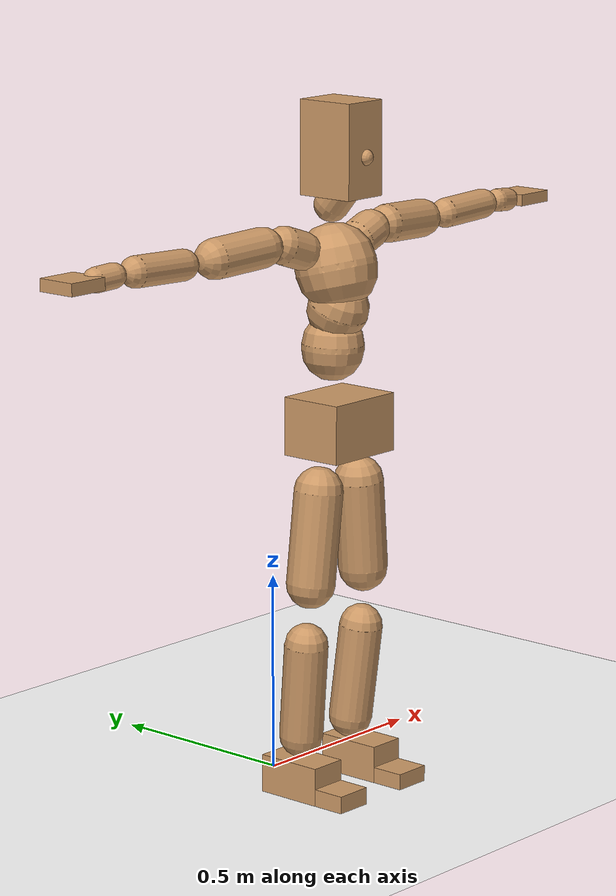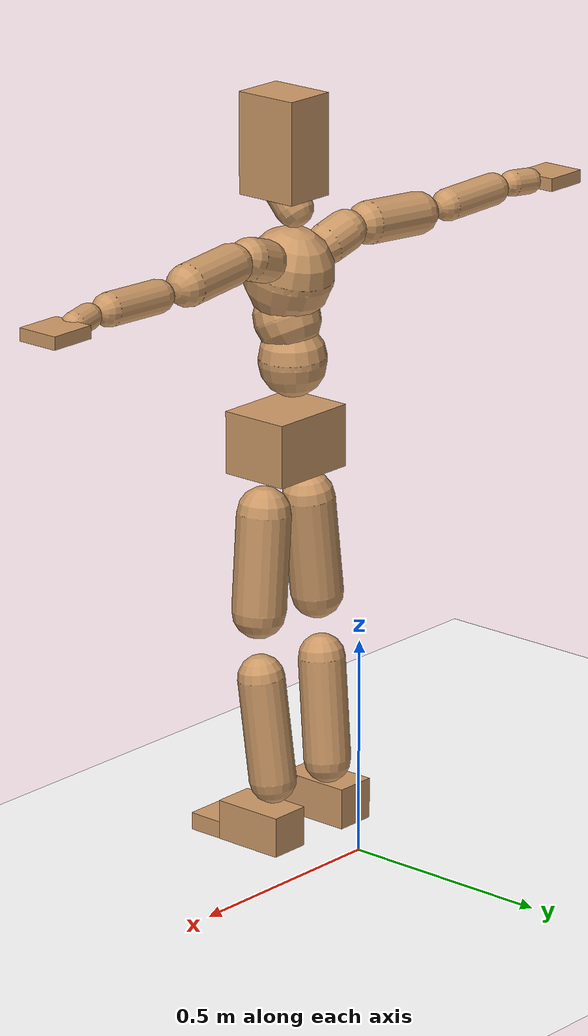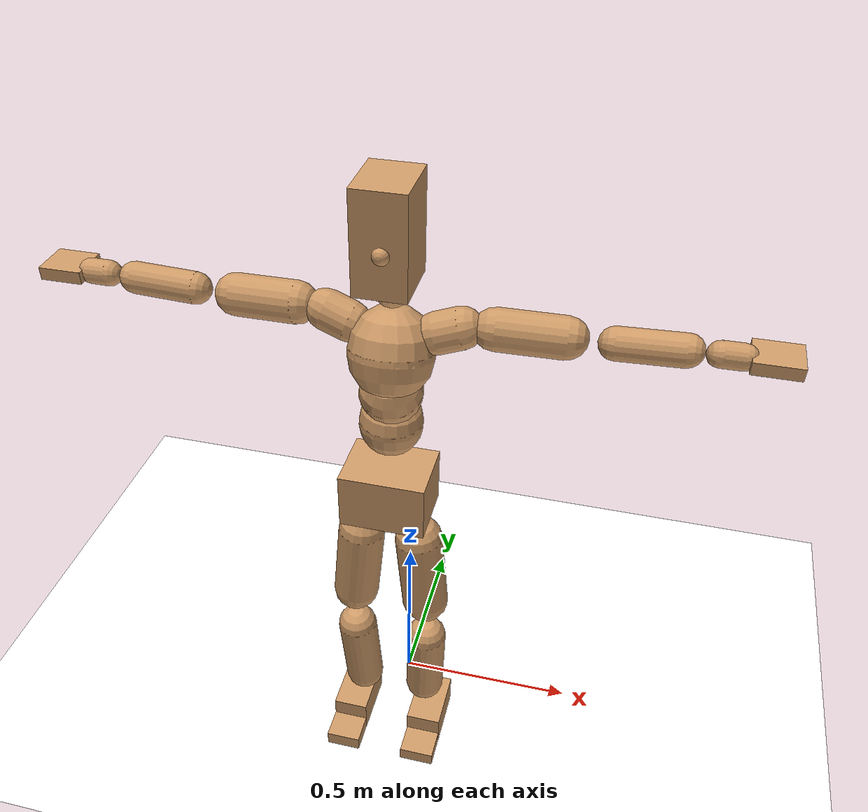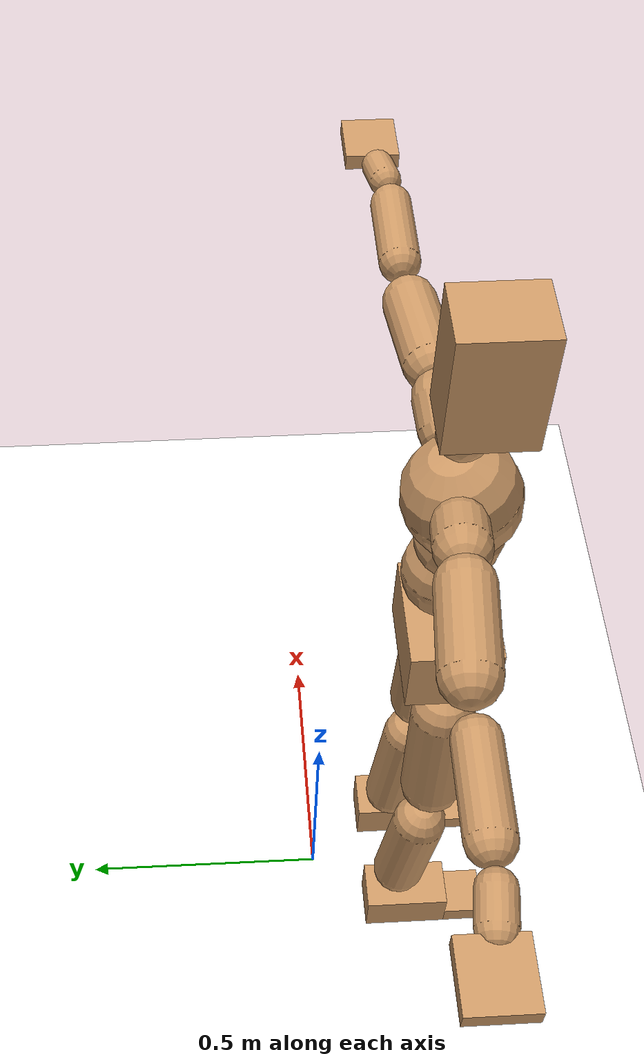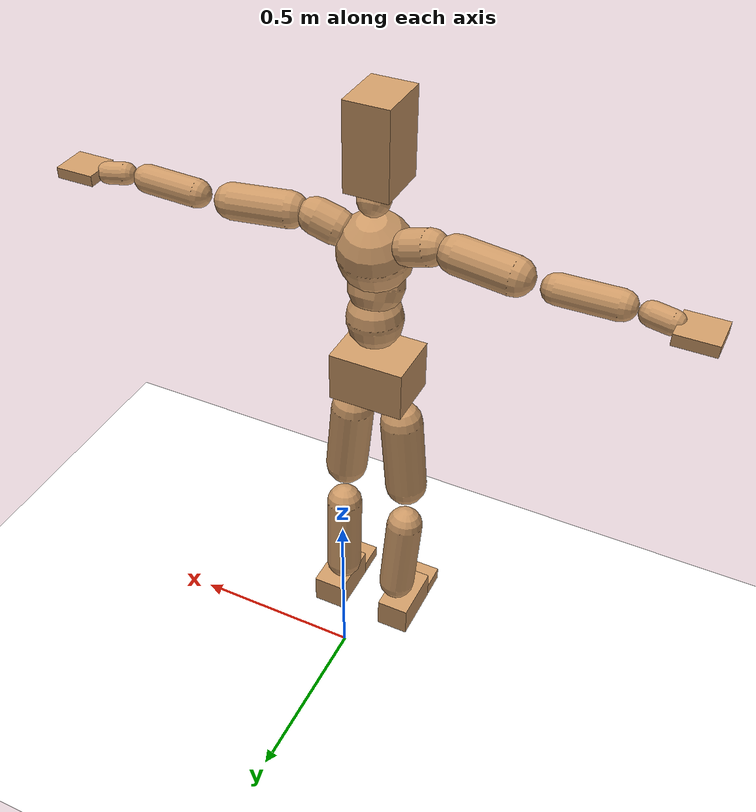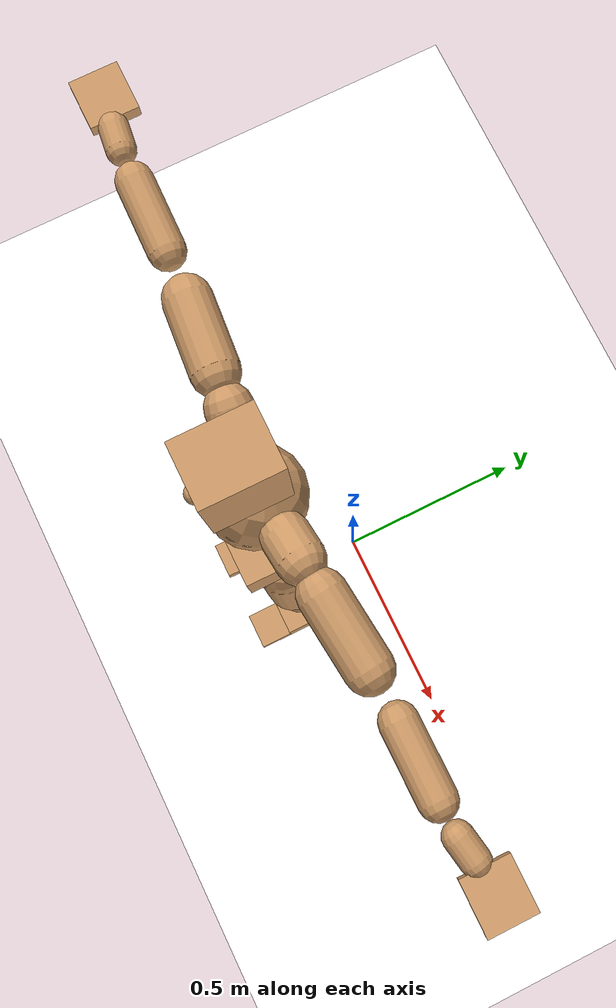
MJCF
<mujoco model="humanoid">
  <option integrator="implicitfast" />

  <visual>
    <global offwidth="1280" offheight="960" />
    <headlight active="1" ambient="0.34 0.34 0.34" diffuse="0.5 0.5 0.5" />
  </visual>

  <default>
    <joint damping="2" stiffness="2" armature="0.01" limited="true" solimplimit="0 .99 .01" />
    <geom condim="1" friction="0.7 0.005 0.0001" solimp=".99 .99 .003" solref="0.015 1" margin="0.001" rgba="0.8 0.6 .4 1" />
    <default class="smplcontact">
      <geom condim="3" friction="1. 0.005 0.0001" solref="0.015 1" solimp="0.98 0.98 0.001" priority="1" />
    </default>
    <default class="stiff_medium">
      <joint stiffness="10" />
    </default>
    <default class="stiff_medium_higher">
      <joint stiffness="50" />
    </default>
    <default class="stiff_high">
      <joint stiffness="100" />
    </default>
  </default>

  <asset>
    <texture type="skybox" builtin="gradient" rgb1="0.99 0.99 0.99" rgb2="0.608 0.828 0.892" width="100" />
    <texture builtin="flat" height="1278" mark="cross" markrgb="1 1 1" name="texgeom" random="0.01" rgb1="0.8 0.6 0.4" rgb2="0.8 0.6 0.4" type="cube" width="127" />
    <texture name="texplane" type="2d" builtin="checker" markrgb="1 1 1" rgb1="0.756 0.772 0.76" rgb2="0.6 0.6 0.6" width="100" height="100" />
    <material name="MatPlane" reflectance="0.5" texture="texplane" texrepeat="1 1" texuniform="true" />
    <material name="geom" texture="texgeom" texuniform="true" />
  </asset>

  <worldbody>
    <light name="tracking_light" pos="0 0 7" dir="0 0 -1" directional="true" cutoff="100" exponent="1" diffuse="1 1 1" specular="0.1 0.1 0.1" mode="trackcom" />
    <camera name="back" pos="0 3 2.4" xyaxes="-1 0 0 0 -1 2" mode="trackcom" />
    <camera name="side" pos="-3 0 2.4" xyaxes="0 -1 0 1 0 2" mode="trackcom" />
    <camera name="front_side" pos="-2.8 -2.8 0.8" xyaxes="0.5 -0.5 0 0.1 0.1 1" mode="trackcom" />
    <geom condim="3" name="floor" pos="0 0 0" rgba="1 1 1 1" size="100 100 .2" type="plane" material="MatPlane" />
    <body name="Pelvis" pos="-0.0018 -0.2233 0.9367" euler="90 0 0">
      <site name="Pelvis" size="0.01" />
      <freejoint name="Pelvis" />
      <geom type="box" pos="-0.0000 -0.0121 -0.0055" size="0.1069 0.0722 0.083" quat="1.0000 0.0000 0.0000 0.0000" density="3165.830099" name="Pelvis" />
      <body name="L_Hip" pos="0.0695 -0.0914 -0.0068">
        <joint name="L_Hip_x" type="hinge" pos="0 0 0" axis="1 0 0" stiffness="10.0" range="-160.0 22.92" class="stiff_medium" damping="15.0" armature="0.01"/>
        <joint name="L_Hip_y" type="hinge" pos="0 0 0" axis="0 1 0" stiffness="10.0" range="-70.0 70.0" class="stiff_medium" damping="10.000000000000002" armature="0.010000000000000005"/>
        <joint name="L_Hip_z" type="hinge" pos="0 0 0" axis="0 0 1" stiffness="10.0" range="-28.65 90.0" class="stiff_medium" damping="9.999999999999998" armature="0.009999999999999998"/>
        <geom type="capsule" density="2040.816327" fromto="0.0069 -0.075 -0.0009 0.0274 -0.3002 -0.0036" size="0.0615" name="L_Hip" />
        <body name="L_Knee" pos="0.0343 -0.3752 -0.0045">
          <joint name="L_Knee_x" type="hinge" pos="0 0 0" axis="1 0 0" range="-5.16 171.89" damping="8.000000000000002" armature="0.010000000000000005" stiffness="2.0"/>
          <joint name="L_Knee_y" type="hinge" pos="0 0 0" axis="0 1 0" range="-4.58 6.88" damping="8.000000000000004" armature="0.010000000000000009" stiffness="2.0"/>
          <joint name="L_Knee_z" type="hinge" pos="0 0 0" axis="0 0 1" range="-6.88 4.58" damping="7.999999999999999" armature="0.009999999999999998" stiffness="2.0"/>
          <geom type="capsule" density="1234.567901" fromto="-0.0027 -0.0796 -0.0087 -0.0109 -0.3184 -0.035" size="0.0541" name="L_Knee" />
          <body name="L_Ankle" pos="-0.0136 -0.398 -0.0437">
            <joint name="L_Ankle_x" type="hinge" pos="0 0 0" axis="1 0 0" range="-45.84 45.84" class="stiff_medium" damping="6.000000000000035" armature="0.010000000000000116" stiffness="10.0"/>
            <joint name="L_Ankle_y" type="hinge" pos="0 0 0" axis="0 1 0" range="-74.48 22.92" class="stiff_medium" damping="3.0" armature="0.010000000000000002" stiffness="10.0"/>
            <joint name="L_Ankle_z" type="hinge" pos="0 0 0" axis="0 0 1" range="-4.58 4.58" class="stiff_medium" damping="5.999999999999914" armature="0.009999999999999716" stiffness="10.0"/>
            <geom type="box" pos="0.0233 -0.0239 0.0242" size="0.0483 0.0464 0.085" quat="1.0000 0.0000 0.0000 0.0000" density="449.071558" name="L_Ankle" class="smplcontact" />
            <body name="L_Toe" pos="0.0264 -0.0558 0.1193">
              <joint name="L_Toe_x" type="hinge" pos="0 0 0" axis="1 0 0" range="-91.67 22.92" armature="0.009999999999999905" damping="1.9999999999999905" stiffness="2.0"/>
              <joint name="L_Toe_y" type="hinge" pos="0 0 0" axis="0 1 0" range="-4.58 4.58" armature="0.01" damping="2.0" stiffness="2.0"/>
              <joint name="L_Toe_z" type="hinge" pos="0 0 0" axis="0 0 1" range="-4.58 4.58" armature="0.009999999999999827" damping="1.9999999999999827" stiffness="2.0"/>
              <geom type="box" pos="-0.003 0.0055 0.0248" size="0.0478 0.02 0.0496" quat="1.0000 0.0000 0.0000 0.0000" density="423.206892" name="L_Toe" class="smplcontact" />
            </body>
          </body>
        </body>
      </body>
      <body name="R_Hip" pos="-0.0677 -0.0905 -0.0043">
        <joint name="R_Hip_x" type="hinge" pos="0 0 0" axis="1 0 0" stiffness="10.0" range="-160.0 22.92" class="stiff_medium" damping="15.0" armature="0.01"/>
        <joint name="R_Hip_y" type="hinge" pos="0 0 0" axis="0 1 0" stiffness="10.0" range="-70.0 70.0" class="stiff_medium" damping="10.000000000000002" armature="0.010000000000000005"/>
        <joint name="R_Hip_z" type="hinge" pos="0 0 0" axis="0 0 1" stiffness="10.0" range="-90.0 28.65" class="stiff_medium" damping="9.999999999999998" armature="0.009999999999999998"/>
        <geom type="capsule" density="2040.816327" fromto="-0.0077 -0.0765 -0.0018 -0.0306 -0.3061 -0.0071" size="0.0606" name="R_Hip" />
        <body name="R_Knee" pos="-0.0383 -0.3826 -0.0089">
          <joint name="R_Knee_x" type="hinge" pos="0 0 0" axis="1 0 0" range="-5.16 171.89" damping="8.000000000000002" armature="0.010000000000000005" stiffness="2.0"/>
          <joint name="R_Knee_y" type="hinge" pos="0 0 0" axis="0 1 0" range="-6.88 4.58" damping="8.000000000000004" armature="0.010000000000000009" stiffness="2.0"/>
          <joint name="R_Knee_z" type="hinge" pos="0 0 0" axis="0 0 1" range="-4.58 6.88" damping="7.999999999999999" armature="0.009999999999999998" stiffness="2.0"/>
          <geom type="capsule" density="1234.567901" fromto="0.0032 -0.0797 -0.0085 0.0126 -0.3187 -0.0338" size="0.0541" name="R_Knee" />
          <body name="R_Ankle" pos="0.0158 -0.3984 -0.0423">
            <joint name="R_Ankle_x" type="hinge" pos="0 0 0" axis="1 0 0" range="-45.84 45.84" class="stiff_medium" damping="6.000000000000035" armature="0.010000000000000116" stiffness="10.0"/>
            <joint name="R_Ankle_y" type="hinge" pos="0 0 0" axis="0 1 0" range="-22.92 74.48" class="stiff_medium" damping="3.0" armature="0.010000000000000002" stiffness="10.0"/>
            <joint name="R_Ankle_z" type="hinge" pos="0 0 0" axis="0 0 1" range="-4.58 4.58" class="stiff_medium" damping="5.999999999999914" armature="0.009999999999999716" stiffness="10.0"/>
            <geom type="box" pos="-0.0212 -0.0174 0.0256" size="0.0483 0.0478 0.0865" quat="1.0000 0.0000 0.0000 0.0000" density="434.700981" name="R_Ankle" class="smplcontact" />
            <body name="R_Toe" pos="-0.0254 -0.0481 0.1233">
              <joint name="R_Toe_x" type="hinge" pos="0 0 0" axis="1 0 0" range="-91.67 22.92" armature="0.009999999999999905" damping="1.9999999999999905" stiffness="2.0"/>
              <joint name="R_Toe_y" type="hinge" pos="0 0 0" axis="0 1 0" range="-4.58 4.58" armature="0.01" damping="2.0" stiffness="2.0"/>
              <joint name="R_Toe_z" type="hinge" pos="0 0 0" axis="0 0 1" range="-4.58 4.58" armature="0.009999999999999827" damping="1.9999999999999827" stiffness="2.0"/>
              <geom type="box" pos="0.0042 0.0045 0.0227" size="0.0479 0.0216 0.0493" quat="1.0000 0.0000 0.0000 0.0000" density="407.384095" name="R_Toe" class="smplcontact" />
            </body>
          </body>
        </body>
      </body>
      <body name="Torso" pos="-0.0025 0.109 -0.0267">
        <joint name="Torso_x" type="hinge" pos="0 0 0" axis="1 0 0" range="-25.78 57.3" class="stiff_medium" damping="14.188821928429034" armature="0.00948489878809874" stiffness="9.4336"/>
        <joint name="Torso_y" type="hinge" pos="0 0 0" axis="0 1 0" range="-57.3 57.3" class="stiff_high" damping="17.79713540900804" armature="0.00835597532149029" stiffness="94.76393137254902"/>
        <joint name="Torso_z" type="hinge" pos="0 0 0" axis="0 0 1" range="-34.38 34.38" class="stiff_high" damping="18.64000078274673" armature="0.009096125802363152" stiffness="95.49385000000001"/>
        <geom type="capsule" density="2040.816327" fromto="0.0025 0.0608 0.0005 0.003 0.0743 0.0006" size="0.0769" name="Torso" />
        <body name="Spine" pos="0.0055 0.1352 0.0011">
          <joint name="Spine_x" type="hinge" pos="0 0 0" axis="1 0 0" stiffness="9.414642549019607" range="-25.78 57.3" class="stiff_medium" damping="14.228023206578294" armature="0.009556586080926376"/>
          <joint name="Spine_y" type="hinge" pos="0 0 0" axis="0 1 0" stiffness="9.419729411764706" range="-57.3 57.3" class="stiff_high" damping="7.092643728326767" armature="0.00834445331076605"/>
          <joint name="Spine_z" type="hinge" pos="0 0 0" axis="0 0 1" stiffness="18.775838039215685" range="-34.38 34.38" class="stiff_high" damping="10.958563304775549" armature="0.008883322208363836"/>
          <geom type="capsule" density="2040.816327" fromto="0.0007 0.0238 0.0114 0.0008 0.0291 0.014" size="0.0755" name="Spine" />
          <body name="Chest" pos="0.0015 0.0529 0.0254">
            <joint name="Chest_x" type="hinge" pos="0 0 0" axis="1 0 0" stiffness="9.394107647058823" range="-25.78 57.3" class="stiff_medium" damping="14.24005552134599" armature="0.009593681905936432"/>
            <joint name="Chest_y" type="hinge" pos="0 0 0" axis="0 1 0" stiffness="8.956024489795919" range="-57.3 57.3" class="stiff_high" damping="6.912305196616278" armature="0.008335862913004586"/>
            <joint name="Chest_z" type="hinge" pos="0 0 0" axis="0 0 1" stiffness="18.910198823529413" range="-34.38 34.38" class="stiff_high" damping="10.9348817756543" armature="0.00878212455642051"/>
            <geom type="capsule" density="2040.816327" fromto="-0.0009 0.0682 -0.0173 -0.001 0.0833 -0.0212" size="0.1002" name="Chest" />
            <body name="Neck" pos="-0.0028 0.2139 -0.0429">
              <joint name="Neck_x" type="hinge" pos="0 0 0" axis="1 0 0" range="-28.65 57.3" class="stiff_medium_higher" damping="9.999999999999996" armature="0.009999999999999993" stiffness="50.0"/>
              <joint name="Neck_y" type="hinge" pos="0 0 0" axis="0 1 0" range="-40.11 40.11" class="stiff_medium_higher" damping="10.0" armature="0.01" stiffness="50.0"/>
              <joint name="Neck_z" type="hinge" pos="0 0 0" axis="0 0 1" range="-40.11 40.11" class="stiff_medium_higher" damping="9.999999999999993" armature="0.009999999999999985" stiffness="50.0"/>
              <geom type="capsule" density="1000" fromto="0.001 0.013 0.0103 0.0041 0.052 0.0411" size="0.0436" name="Neck" />
              <body name="Head" pos="0.0052 0.065 0.0513">
                <joint name="Head_x" type="hinge" pos="0 0 0" axis="1 0 0" range="-28.65 57.3" class="stiff_medium_higher" damping="2.0000000000000004" armature="0.010000000000000005" stiffness="50.0"/>
                <joint name="Head_y" type="hinge" pos="0 0 0" axis="0 1 0" range="-40.11 40.11" class="stiff_medium_higher" damping="2.0" armature="0.01" stiffness="50.0"/>
                <joint name="Head_z" type="hinge" pos="0 0 0" axis="0 0 1" range="-40.11 40.11" class="stiff_medium_higher" damping="2.0" armature="0.01" stiffness="50.0"/>
                <geom type="box" pos="-0.0042 0.0876 -0.0116" size="0.0606 0.1154 0.076" quat="1.0000 0.0000 0.0000 0.0000" density="1018.069894" name="Head" />
                <geom type="capsule" name="nose" size="0.02 0.01" pos="0 0.07 0.05" quat="1 0 0 0" mass="0" contype="0" conaffinity="0" />
              </body>
            </body>
            <body name="L_Thorax" pos="0.0788 0.1217 -0.0341">
              <joint name="L_Thorax_x" type="hinge" pos="0 0 0" axis="1 0 0" range="-10.89 4.58" class="stiff_medium_higher" damping="16.052965082708514" armature="0.007755615027423989" stiffness="41.53405098039216"/>
              <joint name="L_Thorax_y" type="hinge" pos="0 0 0" axis="0 1 0" range="-28.65 17.19" class="stiff_medium_higher" damping="16.585840311117334" armature="0.00826405563829151" stiffness="41.609427450980384"/>
              <joint name="L_Thorax_z" type="hinge" pos="0 0 0" axis="0 0 1" range="-31.51 40.11" class="stiff_medium_higher" damping="16.58616691077934" armature="0.008264516147359784" stiffness="41.608747549019604"/>
              <geom type="capsule" density="1000" fromto="0.0182 0.0061 -0.0018 0.0728 0.0244 -0.0071" size="0.0481925" name="L_Thorax" />
              <body name="L_Shoulder" pos="0.091 0.0305 -0.0089">
                <joint name="L_Shoulder_x" type="hinge" pos="0 0 0" axis="1 0 0" range="-97.4 97.4" class="stiff_medium" damping="4.7489745170591" armature="0.00755234023626953" stiffness="8.294985490196078"/>
                <joint name="L_Shoulder_y" type="hinge" pos="0 0 0" axis="0 1 0" range="-108.86 80.21" class="stiff_medium" damping="4.968161285002791" armature="0.008244390518055722" stiffness="8.316303235294118"/>
                <joint name="L_Shoulder_z" type="hinge" pos="0 0 0" axis="0 0 1" range="-97.4 85.94" class="stiff_medium" damping="4.96784926871888" armature="0.008244971896637882" stiffness="8.314672352941177"/>
                <geom type="capsule" density="1000" fromto="0.0519 -0.0026 -0.0055 0.2077 -0.0102 -0.022" size="0.0478225" name="L_Shoulder" />
                <body name="L_Elbow" pos="0.2596 -0.0128 -0.0275">
                  <joint name="L_Elbow_x" type="hinge" pos="0 0 0" axis="1 0 0" range="-17.19 4.58" damping="3.862597686446772" armature="0.007235036184782271" stiffness="1.6497123725490195"/>
                  <joint name="L_Elbow_y" type="hinge" pos="0 0 0" axis="0 1 0" range="-180.0 17.19" damping="4.099321135669027" armature="0.008148917667530732" stiffness="1.6497340588235292"/>
                  <joint name="L_Elbow_z" type="hinge" pos="0 0 0" axis="0 0 1" range="-100.84 4.58" damping="4.099605212983391" armature="0.00815196593062255" stiffness="1.649345745098039"/>
                  <geom type="capsule" density="1000" fromto="0.0498 0.0018 -0.0002 0.1994 0.0072 -0.0009" size="0.0374625" name="L_Elbow" />
                  <body name="L_Wrist" pos="0.2492 0.009 -0.0012">
                    <joint name="L_Wrist_x" type="hinge" pos="0 0 0" axis="1 0 0" range="-180.0 22.92" armature="0.0071575133527667515" damping="1.5163520147777896" stiffness="1.6062306274509803"/>
                    <joint name="L_Wrist_y" type="hinge" pos="0 0 0" axis="0 1 0" range="-17.19 17.19" armature="0.007838557969223484" damping="1.5884305037909683" stiffness="1.6094232352941173"/>
                    <joint name="L_Wrist_z" type="hinge" pos="0 0 0" axis="0 0 1" range="-22.92 22.92" armature="0.007876179197734472" damping="1.5916983862022975" stiffness="1.6083329803921569"/>
                    <geom type="capsule" density="1000" fromto="0.0168 -0.0016 -0.003 0.0672 -0.0065 -0.012" size="0.029415" name="L_Wrist" class="smplcontact" />
                    <body name="L_Hand" pos="0.084 -0.0082 -0.0149">
                      <joint name="L_Hand_x" type="hinge" pos="0 0 0" axis="1 0 0" range="-17.19 17.19" armature="0.006821652129332352" damping="1.469560076038605" stiffness="1.5829059999999995"/>
                      <joint name="L_Hand_y" type="hinge" pos="0 0 0" axis="0 1 0" range="-51.57 51.57" armature="0.00737390728888607" damping="1.527887567265438" stiffness="1.5829059999999995"/>
                      <joint name="L_Hand_z" type="hinge" pos="0 0 0" axis="0 0 1" range="-91.67 91.67" armature="0.0075211184471723645" damping="1.543063415206246" stiffness="1.5829059999999995"/>
                      <geom type="box" pos="0.0493 0.001 -0.0058" size="0.0541125 0.014615 0.049765" quat="1.0000 0.0000 0.0000 0.0000" density="400.552564" name="L_Hand" class="smplcontact" />
                    </body>
                  </body>
                </body>
              </body>
            </body>
            <body name="R_Thorax" pos="-0.0818 0.1188 -0.0386">
              <joint name="R_Thorax_x" type="hinge" pos="0 0 0" axis="1 0 0" range="-10.89 4.58" class="stiff_medium_higher" damping="16.052965082708514" armature="0.007755615027423989" stiffness="41.53405098039216"/>
              <joint name="R_Thorax_y" type="hinge" pos="0 0 0" axis="0 1 0" range="-17.19 28.65" class="stiff_medium_higher" damping="16.585840311117334" armature="0.00826405563829151" stiffness="41.609427450980384"/>
              <joint name="R_Thorax_z" type="hinge" pos="0 0 0" axis="0 0 1" range="-40.11 31.51" class="stiff_medium_higher" damping="16.58616691077934" armature="0.008264516147359784" stiffness="41.608747549019604"/>
              <geom type="capsule" density="1000" fromto="-0.0192 0.0065 -0.0018 -0.0768 0.026 -0.0073" size="0.0472675" name="R_Thorax" />
              <body name="R_Shoulder" pos="-0.096 0.0326 -0.0091">
                <joint name="R_Shoulder_x" type="hinge" pos="0 0 0" axis="1 0 0" range="-97.4 97.4" class="stiff_medium" damping="4.7489745170591" armature="0.00755234023626953" stiffness="8.294985490196078"/>
                <joint name="R_Shoulder_y" type="hinge" pos="0 0 0" axis="0 1 0" range="-80.21 108.86" class="stiff_medium" damping="4.968161285002791" armature="0.008244390518055722" stiffness="8.316303235294118"/>
                <joint name="R_Shoulder_z" type="hinge" pos="0 0 0" axis="0 0 1" range="-85.94 97.4" class="stiff_medium" damping="4.96784926871888" armature="0.008244971896637882" stiffness="8.314672352941177"/>
                <geom type="capsule" density="1000" fromto="-0.0507 -0.0027 -0.0043 -0.203 -0.0107 -0.0171" size="0.0491175" name="R_Shoulder" />
                <body name="R_Elbow" pos="-0.2537 -0.0133 -0.0214">
                  <joint name="R_Elbow_x" type="hinge" pos="0 0 0" axis="1 0 0" range="-17.19 4.58" damping="3.862597686446772" armature="0.007235036184782271" stiffness="1.6497123725490195"/>
                  <joint name="R_Elbow_y" type="hinge" pos="0 0 0" axis="0 1 0" range="-17.19 180.0" damping="4.099321135669027" armature="0.008148917667530732" stiffness="1.6497340588235292"/>
                  <joint name="R_Elbow_z" type="hinge" pos="0 0 0" axis="0 0 1" range="-4.58 100.84" damping="4.099605212983391" armature="0.00815196593062255" stiffness="1.649345745098039"/>
                  <geom type="capsule" density="1000" fromto="-0.0511 0.0016 -0.0011 -0.2042 0.0062 -0.0044" size="0.03774" name="R_Elbow" />
                  <body name="R_Wrist" pos="-0.2553 0.0078 -0.0056">
                    <joint name="R_Wrist_x" type="hinge" pos="0 0 0" axis="1 0 0" range="-180.0 22.92" armature="0.0071575133527667515" damping="1.5163520147777896" stiffness="1.6062306274509803"/>
                    <joint name="R_Wrist_y" type="hinge" pos="0 0 0" axis="0 1 0" range="-17.19 17.19" armature="0.007838557969223484" damping="1.5884305037909683" stiffness="1.6094232352941173"/>
                    <joint name="R_Wrist_z" type="hinge" pos="0 0 0" axis="0 0 1" range="-22.92 22.92" armature="0.007876179197734472" damping="1.5916983862022975" stiffness="1.6083329803921569"/>
                    <geom type="capsule" density="1000" fromto="-0.0169 -0.0012 -0.0021 -0.0677 -0.0049 -0.0083" size="0.030155" name="R_Wrist" class="smplcontact" />
                    <body name="R_Hand" pos="-0.0846 -0.0061 -0.0103">
                      <joint name="R_Hand_x" type="hinge" pos="0 0 0" axis="1 0 0" range="-17.19 17.19" armature="0.006821652129332352" damping="1.469560076038605" stiffness="1.5829059999999995"/>
                      <joint name="R_Hand_y" type="hinge" pos="0 0 0" axis="0 1 0" range="-51.57 51.57" armature="0.00737390728888607" damping="1.527887567265438" stiffness="1.5829059999999995"/>
                      <joint name="R_Hand_z" type="hinge" pos="0 0 0" axis="0 0 1" range="-91.67 91.67" armature="0.0075211184471723645" damping="1.543063415206246" stiffness="1.5829059999999995"/>
                      <geom type="box" pos="-0.0462 -0.0009 -0.0079" size="0.0526325 0.01517 0.050505" quat="1.0000 0.0000 0.0000 0.0000" density="403.679611" name="R_Hand" class="smplcontact" />
                    </body>
                  </body>
                </body>
              </body>
            </body>
          </body>
        </body>
      </body>
    </body>
  </worldbody>
  <actuator>
    <general name="L_Hip_x" joint="L_Hip_x" biastype="affine" gainprm="287.33006409732246" biasprm="-215.3247604770444 -180.0 -2.0" ctrllimited="true" ctrlrange="-1 1" forcerange="-360.0 360.0" />
    <general name="L_Hip_y" joint="L_Hip_y" biastype="affine" gainprm="219.9114857512855" biasprm="0.0 -180.0 -2.0000000000000004" ctrllimited="true" ctrlrange="-1 1" forcerange="-360.0 360.0" />
    <general name="L_Hip_z" joint="L_Hip_z" biastype="affine" gainprm="186.3749841742145" biasprm="96.3683546488669 -180.0 -1.9999999999999998" ctrllimited="true" ctrlrange="-1 1" forcerange="-360.0 360.0" />
    <general name="L_Knee_x" joint="L_Knee_x" biastype="affine" gainprm="278.10948965903646" biasprm="261.8988715665131 -180.0 -2.0000000000000004" ctrllimited="true" ctrlrange="-1 1" forcerange="-360.0 360.0" />
    <general name="L_Knee_y" joint="L_Knee_y" biastype="affine" gainprm="18.001325905069514" biasprm="3.612831551628262 -180.0 -2.000000000000001" ctrllimited="true" ctrlrange="-1 1" forcerange="-360.0 360.0" />
    <general name="L_Knee_z" joint="L_Knee_z" biastype="affine" gainprm="18.001325905069514" biasprm="-3.612831551628262 -180.0 -1.9999999999999998" ctrllimited="true" ctrlrange="-1 1" forcerange="-360.0 360.0" />
    <general name="L_Ankle_x" joint="L_Ankle_x" biastype="affine" gainprm="72.00530362027807" biasprm="0.0 -90.0 -2.0000000000000115" ctrllimited="true" ctrlrange="-1 1" forcerange="-180.0 180.0" />
    <general name="L_Ankle_y" joint="L_Ankle_y" biastype="affine" gainprm="76.49778111491148" biasprm="-40.49512930477244 -90.0 -2.0" ctrllimited="true" ctrlrange="-1 1" forcerange="-180.0 180.0" />
    <general name="L_Ankle_z" joint="L_Ankle_z" biastype="affine" gainprm="7.1942471767206255" biasprm="0.0 -90.0 -1.9999999999999714" ctrllimited="true" ctrlrange="-1 1" forcerange="-180.0 180.0" />
    <general name="L_Toe_x" joint="L_Toe_x" biastype="affine" gainprm="71.99902043497087" biasprm="-43.19689898685965 -72.0 -0.7999999999999963" ctrllimited="true" ctrlrange="-1 1" forcerange="-144.0 144.0" />
    <general name="L_Toe_y" joint="L_Toe_y" biastype="affine" gainprm="5.755397741376501" biasprm="0.0 -72.0 -0.8" ctrllimited="true" ctrlrange="-1 1" forcerange="-144.0 144.0" />
    <general name="L_Toe_z" joint="L_Toe_z" biastype="affine" gainprm="5.755397741376501" biasprm="0.0 -72.0 -0.7999999999999932" ctrllimited="true" ctrlrange="-1 1" forcerange="-144.0 144.0" />
    <general name="R_Hip_x" joint="R_Hip_x" biastype="affine" gainprm="287.33006409732246" biasprm="-215.3247604770444 -180.0 -2.0" ctrllimited="true" ctrlrange="-1 1" forcerange="-360.0 360.0" />
    <general name="R_Hip_y" joint="R_Hip_y" biastype="affine" gainprm="219.9114857512855" biasprm="0.0 -180.0 -2.0000000000000004" ctrllimited="true" ctrlrange="-1 1" forcerange="-360.0 360.0" />
    <general name="R_Hip_z" joint="R_Hip_z" biastype="affine" gainprm="186.3749841742145" biasprm="-96.3683546488669 -180.0 -1.9999999999999998" ctrllimited="true" ctrlrange="-1 1" forcerange="-360.0 360.0" />
    <general name="R_Knee_x" joint="R_Knee_x" biastype="affine" gainprm="278.10948965903646" biasprm="261.8988715665131 -180.0 -2.0000000000000004" ctrllimited="true" ctrlrange="-1 1" forcerange="-360.0 360.0" />
    <general name="R_Knee_y" joint="R_Knee_y" biastype="affine" gainprm="18.001325905069514" biasprm="-3.612831551628262 -180.0 -2.000000000000001" ctrllimited="true" ctrlrange="-1 1" forcerange="-360.0 360.0" />
    <general name="R_Knee_z" joint="R_Knee_z" biastype="affine" gainprm="18.001325905069514" biasprm="3.612831551628262 -180.0 -1.9999999999999998" ctrllimited="true" ctrlrange="-1 1" forcerange="-360.0 360.0" />
    <general name="R_Ankle_x" joint="R_Ankle_x" biastype="affine" gainprm="72.00530362027807" biasprm="0.0 -90.0 -2.0000000000000115" ctrllimited="true" ctrlrange="-1 1" forcerange="-180.0 180.0" />
    <general name="R_Ankle_y" joint="R_Ankle_y" biastype="affine" gainprm="76.49778111491148" biasprm="40.49512930477244 -90.0 -2.0" ctrllimited="true" ctrlrange="-1 1" forcerange="-180.0 180.0" />
    <general name="R_Ankle_z" joint="R_Ankle_z" biastype="affine" gainprm="7.1942471767206255" biasprm="0.0 -90.0 -1.9999999999999714" ctrllimited="true" ctrlrange="-1 1" forcerange="-180.0 180.0" />
    <general name="R_Toe_x" joint="R_Toe_x" biastype="affine" gainprm="71.99902043497087" biasprm="-43.19689898685965 -72.0 -0.7999999999999963" ctrllimited="true" ctrlrange="-1 1" forcerange="-144.0 144.0" />
    <general name="R_Toe_y" joint="R_Toe_y" biastype="affine" gainprm="5.755397741376501" biasprm="0.0 -72.0 -0.8" ctrllimited="true" ctrlrange="-1 1" forcerange="-144.0 144.0" />
    <general name="R_Toe_z" joint="R_Toe_z" biastype="affine" gainprm="5.755397741376501" biasprm="0.0 -72.0 -0.7999999999999932" ctrllimited="true" ctrlrange="-1 1" forcerange="-144.0 144.0" />
    <general name="Torso_x" joint="Torso_x" biastype="affine" gainprm="164.146852279976" biasprm="62.27622513077567 -226.4064 -3.7836858475810757" ctrllimited="true" ctrlrange="-1 1" forcerange="-339.6096 339.6096" />
    <general name="Torso_y" joint="Torso_y" biastype="affine" gainprm="227.45018835771953" biasprm="0.0 -227.43343529411766 -3.5594270818016076" ctrllimited="true" ctrlrange="-1 1" forcerange="-341.1501529411765 341.1501529411765" />
    <general name="Torso_z" joint="Torso_z" biastype="affine" gainprm="137.52127326238585" biasprm="0.0 -229.18524000000002 -3.7280001565493457" ctrllimited="true" ctrlrange="-1 1" forcerange="-343.77786000000003 343.77786000000003" />
    <general name="Spine_x" joint="Spine_x" biastype="affine" gainprm="163.8169881871924" biasprm="62.15107688565604 -225.95142117647057 -3.7941395217542118" ctrllimited="true" ctrlrange="-1 1" forcerange="-338.92713176470585 338.92713176470585" />
    <general name="Spine_y" joint="Spine_y" biastype="affine" gainprm="226.09015877166027" biasprm="0.0 -226.07350588235295 -3.5463218641633834" ctrllimited="true" ctrlrange="-1 1" forcerange="-339.1102588235294 339.1102588235294" />
    <general name="Spine_z" joint="Spine_z" biastype="affine" gainprm="135.19599187388917" biasprm="0.0 -225.31005647058822 -3.6528544349251826" ctrllimited="true" ctrlrange="-1 1" forcerange="-337.9650847058823 337.9650847058823" />
    <general name="Chest_x" joint="Chest_x" biastype="affine" gainprm="163.45967607742088" biasprm="62.01551504526125 -225.45858352941173 -3.797348139025597" ctrllimited="true" ctrlrange="-1 1" forcerange="-338.1878752941176 338.1878752941176" />
    <general name="Chest_y" joint="Chest_y" biastype="affine" gainprm="214.9604208728003" biasprm="0.0 -214.94458775510205 -3.456152598308139" ctrllimited="true" ctrlrange="-1 1" forcerange="-322.4168816326531 322.4168816326531" />
    <general name="Chest_z" joint="Chest_z" biastype="affine" gainprm="136.16346078080605" biasprm="0.0 -226.92238588235293 -3.6449605918847667" ctrllimited="true" ctrlrange="-1 1" forcerange="-340.38357882352943 340.38357882352943" />
    <general name="Neck_x" joint="Neck_x" biastype="affine" gainprm="27.00198885760427" biasprm="9.000662952534757 -36.0 -0.7999999999999997" ctrllimited="true" ctrlrange="-1 1" forcerange="-72.0 72.0" />
    <general name="Neck_y" joint="Neck_y" biastype="affine" gainprm="25.20185626709732" biasprm="0.0 -36.0 -0.8" ctrllimited="true" ctrlrange="-1 1" forcerange="-72.0 72.0" />
    <general name="Neck_z" joint="Neck_z" biastype="affine" gainprm="25.20185626709732" biasprm="0.0 -36.0 -0.7999999999999994" ctrllimited="true" ctrlrange="-1 1" forcerange="-72.0 72.0" />
    <general name="Head_x" joint="Head_x" biastype="affine" gainprm="18.001325905069514" biasprm="6.000441968356505 -24.0 -0.8000000000000003" ctrllimited="true" ctrlrange="-1 1" forcerange="-48.0 48.0" />
    <general name="Head_y" joint="Head_y" biastype="affine" gainprm="16.801237511398213" biasprm="0.0 -24.0 -0.8" ctrllimited="true" ctrlrange="-1 1" forcerange="-48.0 48.0" />
    <general name="Head_z" joint="Head_z" biastype="affine" gainprm="16.801237511398213" biasprm="0.0 -24.0 -0.8" ctrllimited="true" ctrlrange="-1 1" forcerange="-48.0 48.0" />
    <general name="L_Thorax_x" joint="L_Thorax_x" biastype="affine" gainprm="13.457153894275041" biasprm="-5.488987787516195 -99.68172235294118 -1.2842372066166812" ctrllimited="true" ctrlrange="-1 1" forcerange="-199.36344470588236 199.36344470588236" />
    <general name="L_Thorax_y" joint="L_Thorax_y" biastype="affine" gainprm="39.94799276098367" biasprm="-9.986998190245917 -99.86262588235293 -1.326867224889387" ctrllimited="true" ctrlrange="-1 1" forcerange="-199.72525176470586 199.72525176470586" />
    <general name="L_Thorax_z" joint="L_Thorax_z" biastype="affine" gainprm="62.413361503117855" biasprm="7.494483509170811 -99.86099411764705 -1.3268933528623472" ctrllimited="true" ctrlrange="-1 1" forcerange="-199.7219882352941 199.7219882352941" />
    <general name="L_Shoulder_x" joint="L_Shoulder_x" biastype="affine" gainprm="67.68511833390787" biasprm="0.0 -39.81593035294118 -1.2663932045490935" ctrllimited="true" ctrlrange="-1 1" forcerange="-79.63186070588236 79.63186070588236" />
    <general name="L_Shoulder_y" joint="L_Shoulder_y" biastype="affine" gainprm="65.8630062902155" biasprm="-9.980298990927562 -39.918255529411766 -1.3248430093340777" ctrllimited="true" ctrlrange="-1 1" forcerange="-79.83651105882353 79.83651105882353" />
    <general name="L_Shoulder_z" joint="L_Shoulder_z" biastype="affine" gainprm="63.85442175922226" biasprm="-3.9913367151777503 -39.91042729411765 -1.3247598049917015" ctrllimited="true" ctrlrange="-1 1" forcerange="-79.8208545882353 79.8208545882353" />
    <general name="L_Elbow_x" joint="L_Elbow_x" biastype="affine" gainprm="11.282790736086481" biasprm="-6.5354153046417345 -59.389645411764704 -0.6180156298314836" ctrllimited="true" ctrlrange="-1 1" forcerange="-118.77929082352941 118.77929082352941" />
    <general name="L_Elbow_y" joint="L_Elbow_y" biastype="affine" gainprm="102.19948332725632" biasprm="-84.38104305751104 -59.39042611764705 -0.6558913817070443" ctrllimited="true" ctrlrange="-1 1" forcerange="-118.7808522352941 118.7808522352941" />
    <general name="L_Elbow_z" joint="L_Elbow_z" biastype="affine" gainprm="54.624137042303865" biasprm="-49.87781665426077 -59.376446823529406 -0.6559368340773427" ctrllimited="true" ctrlrange="-1 1" forcerange="-118.75289364705881 118.75289364705881" />
    <general name="L_Wrist_x" joint="L_Wrist_x" biastype="affine" gainprm="17.065985751076063" biasprm="-13.210748283949478 -9.637383764705882 -0.6065408059111159" ctrllimited="true" ctrlrange="-1 1" forcerange="-19.274767529411765 19.274767529411765" />
    <general name="L_Wrist_y" joint="L_Wrist_y" biastype="affine" gainprm="2.897175217772079" biasprm="0.0 -9.656539411764705 -0.6353722015163874" ctrllimited="true" ctrlrange="-1 1" forcerange="-19.31307882352941 19.31307882352941" />
    <general name="L_Wrist_z" joint="L_Wrist_z" biastype="affine" gainprm="3.8602834858548" biasprm="0.0 -9.649997882352942 -0.6366793544809191" ctrllimited="true" ctrlrange="-1 1" forcerange="-19.299995764705884 19.299995764705884" />
    <general name="L_Hand_x" joint="L_Hand_x" biastype="affine" gainprm="2.849440678308996" biasprm="0.0 -9.497435999999997 -0.587824030415442" ctrllimited="true" ctrlrange="-1 1" forcerange="-18.994871999999994 18.994871999999994" />
    <general name="L_Hand_y" joint="L_Hand_y" biastype="affine" gainprm="8.548322034926986" biasprm="0.0 -9.497435999999997 -0.6111550269061752" ctrllimited="true" ctrlrange="-1 1" forcerange="-18.994871999999994 18.994871999999994" />
    <general name="L_Hand_z" joint="L_Hand_z" biastype="affine" gainprm="15.195359335694334" biasprm="0.0 -9.497435999999997 -0.6172253660824985" ctrllimited="true" ctrlrange="-1 1" forcerange="-18.994871999999994 18.994871999999994" />
    <general name="R_Thorax_x" joint="R_Thorax_x" biastype="affine" gainprm="13.457153894275041" biasprm="-5.488987787516195 -99.68172235294118 -1.2842372066166812" ctrllimited="true" ctrlrange="-1 1" forcerange="-199.36344470588236 199.36344470588236" />
    <general name="R_Thorax_y" joint="R_Thorax_y" biastype="affine" gainprm="39.94799276098367" biasprm="9.986998190245911 -99.86262588235293 -1.326867224889387" ctrllimited="true" ctrlrange="-1 1" forcerange="-199.72525176470586 199.72525176470586" />
    <general name="R_Thorax_z" joint="R_Thorax_z" biastype="affine" gainprm="62.413361503117855" biasprm="-7.494483509170811 -99.86099411764705 -1.3268933528623472" ctrllimited="true" ctrlrange="-1 1" forcerange="-199.7219882352941 199.7219882352941" />
    <general name="R_Shoulder_x" joint="R_Shoulder_x" biastype="affine" gainprm="67.68511833390787" biasprm="0.0 -39.81593035294118 -1.2663932045490935" ctrllimited="true" ctrlrange="-1 1" forcerange="-79.63186070588236 79.63186070588236" />
    <general name="R_Shoulder_y" joint="R_Shoulder_y" biastype="affine" gainprm="65.8630062902155" biasprm="9.980298990927562 -39.918255529411766 -1.3248430093340777" ctrllimited="true" ctrlrange="-1 1" forcerange="-79.83651105882353 79.83651105882353" />
    <general name="R_Shoulder_z" joint="R_Shoulder_z" biastype="affine" gainprm="63.85442175922226" biasprm="3.9913367151777415 -39.91042729411765 -1.3247598049917015" ctrllimited="true" ctrlrange="-1 1" forcerange="-79.8208545882353 79.8208545882353" />
    <general name="R_Elbow_x" joint="R_Elbow_x" biastype="affine" gainprm="11.282790736086481" biasprm="-6.5354153046417345 -59.389645411764704 -0.6180156298314836" ctrllimited="true" ctrlrange="-1 1" forcerange="-118.77929082352941 118.77929082352941" />
    <general name="R_Elbow_y" joint="R_Elbow_y" biastype="affine" gainprm="102.19948332725632" biasprm="84.38104305751104 -59.39042611764705 -0.6558913817070443" ctrllimited="true" ctrlrange="-1 1" forcerange="-118.7808522352941 118.7808522352941" />
    <general name="R_Elbow_z" joint="R_Elbow_z" biastype="affine" gainprm="54.624137042303865" biasprm="49.87781665426076 -59.376446823529406 -0.6559368340773427" ctrllimited="true" ctrlrange="-1 1" forcerange="-118.75289364705881 118.75289364705881" />
    <general name="R_Wrist_x" joint="R_Wrist_x" biastype="affine" gainprm="17.065985751076063" biasprm="-13.210748283949478 -9.637383764705882 -0.6065408059111159" ctrllimited="true" ctrlrange="-1 1" forcerange="-19.274767529411765 19.274767529411765" />
    <general name="R_Wrist_y" joint="R_Wrist_y" biastype="affine" gainprm="2.897175217772079" biasprm="0.0 -9.656539411764705 -0.6353722015163874" ctrllimited="true" ctrlrange="-1 1" forcerange="-19.31307882352941 19.31307882352941" />
    <general name="R_Wrist_z" joint="R_Wrist_z" biastype="affine" gainprm="3.8602834858548" biasprm="0.0 -9.649997882352942 -0.6366793544809191" ctrllimited="true" ctrlrange="-1 1" forcerange="-19.299995764705884 19.299995764705884" />
    <general name="R_Hand_x" joint="R_Hand_x" biastype="affine" gainprm="2.849440678308996" biasprm="0.0 -9.497435999999997 -0.587824030415442" ctrllimited="true" ctrlrange="-1 1" forcerange="-18.994871999999994 18.994871999999994" />
    <general name="R_Hand_y" joint="R_Hand_y" biastype="affine" gainprm="8.548322034926986" biasprm="0.0 -9.497435999999997 -0.6111550269061752" ctrllimited="true" ctrlrange="-1 1" forcerange="-18.994871999999994 18.994871999999994" />
    <general name="R_Hand_z" joint="R_Hand_z" biastype="affine" gainprm="15.195359335694334" biasprm="0.0 -9.497435999999997 -0.6172253660824985" ctrllimited="true" ctrlrange="-1 1" forcerange="-18.994871999999994 18.994871999999994" />
  </actuator>
  <contact>
    <exclude body1="Torso" body2="Chest" />
    <exclude body1="Head" body2="Chest" />
    <exclude body1="R_Knee" body2="R_Toe" />
    <exclude body1="R_Knee" body2="L_Ankle" />
    <exclude body1="R_Knee" body2="L_Toe" />
    <exclude body1="L_Knee" body2="L_Toe" />
    <exclude body1="L_Knee" body2="R_Ankle" />
    <exclude body1="L_Knee" body2="R_Toe" />
    <exclude body1="L_Shoulder" body2="Chest" />
    <exclude body1="R_Shoulder" body2="Chest" />
  </contact>
  <sensor>
    <framelinvel name="sensor_Pelvis_framelinvel" objtype="xbody" objname="Pelvis" />
    <framelinvel name="sensor_L_Hip_framelinvel" objtype="xbody" objname="L_Hip" />
    <framelinvel name="sensor_L_Knee_framelinvel" objtype="xbody" objname="L_Knee" />
    <framelinvel name="sensor_L_Ankle_framelinvel" objtype="xbody" objname="L_Ankle" />
    <framelinvel name="sensor_L_Toe_framelinvel" objtype="xbody" objname="L_Toe" />
    <framelinvel name="sensor_R_Hip_framelinvel" objtype="xbody" objname="R_Hip" />
    <framelinvel name="sensor_R_Knee_framelinvel" objtype="xbody" objname="R_Knee" />
    <framelinvel name="sensor_R_Ankle_framelinvel" objtype="xbody" objname="R_Ankle" />
    <framelinvel name="sensor_R_Toe_framelinvel" objtype="xbody" objname="R_Toe" />
    <framelinvel name="sensor_Torso_framelinvel" objtype="xbody" objname="Torso" />
    <framelinvel name="sensor_Spine_framelinvel" objtype="xbody" objname="Spine" />
    <framelinvel name="sensor_Chest_framelinvel" objtype="xbody" objname="Chest" />
    <framelinvel name="sensor_Neck_framelinvel" objtype="xbody" objname="Neck" />
    <framelinvel name="sensor_Head_framelinvel" objtype="xbody" objname="Head" />
    <framelinvel name="sensor_L_Thorax_framelinvel" objtype="xbody" objname="L_Thorax" />
    <framelinvel name="sensor_L_Shoulder_framelinvel" objtype="xbody" objname="L_Shoulder" />
    <framelinvel name="sensor_L_Elbow_framelinvel" objtype="xbody" objname="L_Elbow" />
    <framelinvel name="sensor_L_Wrist_framelinvel" objtype="xbody" objname="L_Wrist" />
    <framelinvel name="sensor_L_Hand_framelinvel" objtype="xbody" objname="L_Hand" />
    <framelinvel name="sensor_R_Thorax_framelinvel" objtype="xbody" objname="R_Thorax" />
    <framelinvel name="sensor_R_Shoulder_framelinvel" objtype="xbody" objname="R_Shoulder" />
    <framelinvel name="sensor_R_Elbow_framelinvel" objtype="xbody" objname="R_Elbow" />
    <framelinvel name="sensor_R_Wrist_framelinvel" objtype="xbody" objname="R_Wrist" />
    <framelinvel name="sensor_R_Hand_framelinvel" objtype="xbody" objname="R_Hand" />
    <frameangvel name="sensor_Pelvis_frameangvel" objtype="xbody" objname="Pelvis" />
    <frameangvel name="sensor_L_Hip_frameangvel" objtype="xbody" objname="L_Hip" />
    <frameangvel name="sensor_L_Knee_frameangvel" objtype="xbody" objname="L_Knee" />
    <frameangvel name="sensor_L_Ankle_frameangvel" objtype="xbody" objname="L_Ankle" />
    <frameangvel name="sensor_L_Toe_frameangvel" objtype="xbody" objname="L_Toe" />
    <frameangvel name="sensor_R_Hip_frameangvel" objtype="xbody" objname="R_Hip" />
    <frameangvel name="sensor_R_Knee_frameangvel" objtype="xbody" objname="R_Knee" />
    <frameangvel name="sensor_R_Ankle_frameangvel" objtype="xbody" objname="R_Ankle" />
    <frameangvel name="sensor_R_Toe_frameangvel" objtype="xbody" objname="R_Toe" />
    <frameangvel name="sensor_Torso_frameangvel" objtype="xbody" objname="Torso" />
    <frameangvel name="sensor_Spine_frameangvel" objtype="xbody" objname="Spine" />
    <frameangvel name="sensor_Chest_frameangvel" objtype="xbody" objname="Chest" />
    <frameangvel name="sensor_Neck_frameangvel" objtype="xbody" objname="Neck" />
    <frameangvel name="sensor_Head_frameangvel" objtype="xbody" objname="Head" />
    <frameangvel name="sensor_L_Thorax_frameangvel" objtype="xbody" objname="L_Thorax" />
    <frameangvel name="sensor_L_Shoulder_frameangvel" objtype="xbody" objname="L_Shoulder" />
    <frameangvel name="sensor_L_Elbow_frameangvel" objtype="xbody" objname="L_Elbow" />
    <frameangvel name="sensor_L_Wrist_frameangvel" objtype="xbody" objname="L_Wrist" />
    <frameangvel name="sensor_L_Hand_frameangvel" objtype="xbody" objname="L_Hand" />
    <frameangvel name="sensor_R_Thorax_frameangvel" objtype="xbody" objname="R_Thorax" />
    <frameangvel name="sensor_R_Shoulder_frameangvel" objtype="xbody" objname="R_Shoulder" />
    <frameangvel name="sensor_R_Elbow_frameangvel" objtype="xbody" objname="R_Elbow" />
    <frameangvel name="sensor_R_Wrist_frameangvel" objtype="xbody" objname="R_Wrist" />
    <frameangvel name="sensor_R_Hand_frameangvel" objtype="xbody" objname="R_Hand" />
    <subtreelinvel name="Chest_subtreelinvel" body="Chest" />
    <gyro name="Pelvis_gyro" site="Pelvis" />
  </sensor>
</mujoco>
